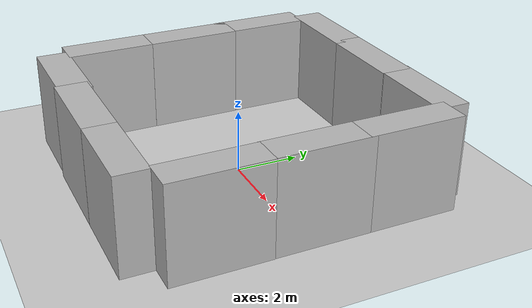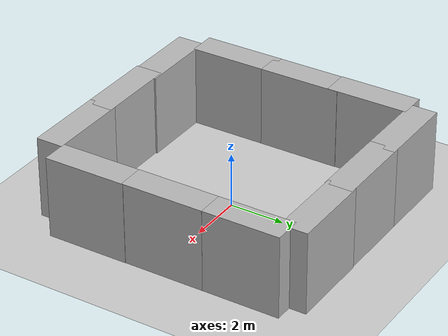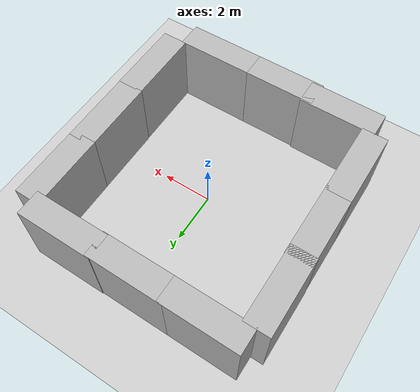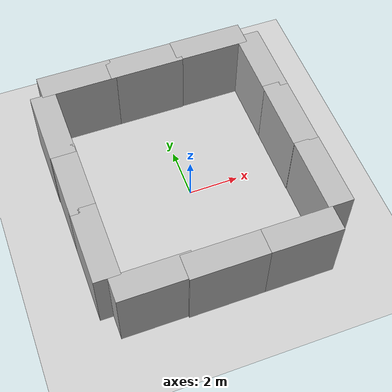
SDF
<sdf version="1.7">
 <world name="default">
  <light name="sun" type="directional">
   <pose>0 0 10 0 -0 0</pose>
   <diffuse>0.8 0.8 0.8 1</diffuse>
   <specular>0.2 0.2 0.2 1</specular>
   <attenuation>
    <range>1000</range>
    <constant>0.9</constant>
    <linear>0.01</linear>
    <quadratic>0.001</quadratic>
   </attenuation>
   <direction>-0.5 0.1 -0.9</direction>
   <spot><inner_angle>0</inner_angle><outer_angle>0</outer_angle><falloff>0</falloff></spot>
  </light>
  <model name="ground_plane">
   <static>1</static>
   <link name="link">
    <collision name="collision">
     <geometry><plane><normal>0 0 1</normal><size>100 100</size></plane></geometry>
     <surface><friction><ode><mu>100</mu><mu2>50</mu2></ode></friction></surface>
    </collision>
    <visual name="visual">
     <cast_shadows>0</cast_shadows>
     <geometry><plane><normal>0 0 1</normal><size>100 100</size></plane></geometry>
     <material>
      <script><uri>file://media/materials/scripts/gazebo.material</uri><name>Gazebo/Grey</name></script>
     </material>
    </visual>
   </link>
  </model>
  <gravity>0 0 -9.8</gravity>
  <magnetic_field>6e-06 2.3e-05 -4.2e-05</magnetic_field>
  <atmosphere type="adiabatic"/>
  <physics type="ode">
   <max_step_size>0.001</max_step_size>
   <real_time_factor>1</real_time_factor>
   <real_time_update_rate>1000</real_time_update_rate>
  </physics>
  <scene><ambient>0.4 0.4 0.4 1</ambient><background>0.7 0.7 0.7 1</background><shadows>1</shadows></scene>
  <audio><device>default</device></audio>
  <spherical_coordinates>
   <surface_model>EARTH_WGS84</surface_model>
   <latitude_deg>0</latitude_deg>
   <longitude_deg>0</longitude_deg>
   <elevation>0</elevation>
   <heading_deg>0</heading_deg>
  </spherical_coordinates>
  <model name="brick_box_3x1x3">
   <static>1</static>
   <link name="chassis">
    <pose>0 0 1.5 0 -0 0</pose>
    <collision name="collision"><geometry><box><size>3 1 3</size></box></geometry></collision>
    <visual name="visual">
     <geometry><mesh><uri>model://brick_box_3x1x3/meshes/simple_box.dae</uri><scale>3 1 3</scale></mesh></geometry>
     <material>
      <script>
       <uri>model://brick_box_3x1x3/materials/scripts</uri>
       <uri>model://brick_box_3x1x3/materials/textures</uri>
       <name>BrickBox/Diffuse</name>
      </script>
     </material>
    </visual>
   </link>
   <pose>-0.404993 -4.56188 0 0 -0 0</pose>
  </model>
  <model name="brick_box_3x1x3_0">
   <static>1</static>
   <link name="chassis">
    <pose>0 0 1.5 0 -0 0</pose>
    <collision name="collision"><geometry><box><size>3 1 3</size></box></geometry></collision>
    <visual name="visual">
     <geometry><mesh><uri>model://brick_box_3x1x3/meshes/simple_box.dae</uri><scale>3 1 3</scale></mesh></geometry>
     <material>
      <script>
       <uri>model://brick_box_3x1x3/materials/scripts</uri>
       <uri>model://brick_box_3x1x3/materials/textures</uri>
       <name>BrickBox/Diffuse</name>
      </script>
     </material>
    </visual>
   </link>
   <pose>2.36751 -4.5609 0 0 -0 0</pose>
  </model>
  <model name="brick_box_3x1x3_1">
   <static>1</static>
   <link name="chassis">
    <pose>0 0 1.5 0 -0 0</pose>
    <collision name="collision"><geometry><box><size>3 1 3</size></box></geometry></collision>
    <visual name="visual">
     <geometry><mesh><uri>model://brick_box_3x1x3/meshes/simple_box.dae</uri><scale>3 1 3</scale></mesh></geometry>
     <material>
      <script>
       <uri>model://brick_box_3x1x3/materials/scripts</uri>
       <uri>model://brick_box_3x1x3/materials/textures</uri>
       <name>BrickBox/Diffuse</name>
      </script>
     </material>
    </visual>
   </link>
   <pose>4.20893 -2.57435 0 0 0 -1.56738</pose>
  </model>
  <model name="brick_box_3x1x3_1_clone">
   <static>1</static>
   <link name="chassis">
    <pose>0 0 1.5 0 -0 0</pose>
    <collision name="collision"><geometry><box><size>3 1 3</size></box></geometry></collision>
    <visual name="visual">
     <geometry><mesh><uri>model://brick_box_3x1x3/meshes/simple_box.dae</uri><scale>3 1 3</scale></mesh></geometry>
     <material>
      <script>
       <uri>model://brick_box_3x1x3/materials/scripts</uri>
       <uri>model://brick_box_3x1x3/materials/textures</uri>
       <name>BrickBox/Diffuse</name>
      </script>
     </material>
    </visual>
   </link>
   <pose>4.18643 0.370492 0 0 0 -1.56738</pose>
  </model>
  <model name="brick_box_3x1x3_1_clone_0">
   <static>1</static>
   <link name="chassis">
    <pose>0 0 1.5 0 -0 0</pose>
    <collision name="collision"><geometry><box><size>3 1 3</size></box></geometry></collision>
    <visual name="visual">
     <geometry><mesh><uri>model://brick_box_3x1x3/meshes/simple_box.dae</uri><scale>3 1 3</scale></mesh></geometry>
     <material>
      <script>
       <uri>model://brick_box_3x1x3/materials/scripts</uri>
       <uri>model://brick_box_3x1x3/materials/textures</uri>
       <name>BrickBox/Diffuse</name>
      </script>
     </material>
    </visual>
   </link>
   <pose>4.17464 3.17613 0 0 0 -1.56738</pose>
  </model>
  <model name="brick_box_3x1x3_1_clone_1">
   <static>1</static>
   <link name="chassis">
    <pose>0 0 1.5 0 -0 0</pose>
    <collision name="collision"><geometry><box><size>3 1 3</size></box></geometry></collision>
    <visual name="visual">
     <geometry><mesh><uri>model://brick_box_3x1x3/meshes/simple_box.dae</uri><scale>3 1 3</scale></mesh></geometry>
     <material>
      <script>
       <uri>model://brick_box_3x1x3/materials/scripts</uri>
       <uri>model://brick_box_3x1x3/materials/textures</uri>
       <name>BrickBox/Diffuse</name>
      </script>
     </material>
    </visual>
   </link>
   <pose>-4.48611 -2.56342 0 0 0 -1.56738</pose>
  </model>
  <model name="brick_box_3x1x3_1_clone_2">
   <static>1</static>
   <link name="chassis">
    <pose>0 0 1.5 0 -0 0</pose>
    <collision name="collision"><geometry><box><size>3 1 3</size></box></geometry></collision>
    <visual name="visual">
     <geometry><mesh><uri>model://brick_box_3x1x3/meshes/simple_box.dae</uri><scale>3 1 3</scale></mesh></geometry>
     <material>
      <script>
       <uri>model://brick_box_3x1x3/materials/scripts</uri>
       <uri>model://brick_box_3x1x3/materials/textures</uri>
       <name>BrickBox/Diffuse</name>
      </script>
     </material>
    </visual>
   </link>
   <pose>-4.49432 0.219826 0 0 0 -1.56738</pose>
  </model>
  <model name="brick_box_3x1x3_1_clone_3">
   <static>1</static>
   <link name="chassis">
    <pose>0 0 1.5 0 -0 0</pose>
    <collision name="collision"><geometry><box><size>3 1 3</size></box></geometry></collision>
    <visual name="visual">
     <geometry><mesh><uri>model://brick_box_3x1x3/meshes/simple_box.dae</uri><scale>3 1 3</scale></mesh></geometry>
     <material>
      <script>
       <uri>model://brick_box_3x1x3/materials/scripts</uri>
       <uri>model://brick_box_3x1x3/materials/textures</uri>
       <name>BrickBox/Diffuse</name>
      </script>
     </material>
    </visual>
   </link>
   <pose>-4.5204 2.84961 0 0 0 -1.56738</pose>
  </model>
  <model name="brick_box_3x1x3_clone">
   <static>1</static>
   <link name="chassis">
    <pose>0 0 1.5 0 -0 0</pose>
    <collision name="collision"><geometry><box><size>3 1 3</size></box></geometry></collision>
    <visual name="visual">
     <geometry><mesh><uri>model://brick_box_3x1x3/meshes/simple_box.dae</uri><scale>3 1 3</scale></mesh></geometry>
     <material>
      <script>
       <uri>model://brick_box_3x1x3/materials/scripts</uri>
       <uri>model://brick_box_3x1x3/materials/textures</uri>
       <name>BrickBox/Diffuse</name>
      </script>
     </material>
    </visual>
   </link>
   <pose>-2.96949 -4.50432 0 0 -0 0</pose>
  </model>
  <model name="brick_box_3x1x3_clone_0">
   <static>1</static>
   <link name="chassis">
    <pose>0 0 1.5 0 -0 0</pose>
    <collision name="collision"><geometry><box><size>3 1 3</size></box></geometry></collision>
    <visual name="visual">
     <geometry><mesh><uri>model://brick_box_3x1x3/meshes/simple_box.dae</uri><scale>3 1 3</scale></mesh></geometry>
     <material>
      <script>
       <uri>model://brick_box_3x1x3/materials/scripts</uri>
       <uri>model://brick_box_3x1x3/materials/textures</uri>
       <name>BrickBox/Diffuse</name>
      </script>
     </material>
    </visual>
   </link>
   <pose>-3.04181 4.76327 0 0 -0 0</pose>
  </model>
  <model name="brick_box_3x1x3_clone_1">
   <static>1</static>
   <link name="chassis">
    <pose>0 0 1.5 0 -0 0</pose>
    <collision name="collision"><geometry><box><size>3 1 3</size></box></geometry></collision>
    <visual name="visual">
     <geometry><mesh><uri>model://brick_box_3x1x3/meshes/simple_box.dae</uri><scale>3 1 3</scale></mesh></geometry>
     <material>
      <script>
       <uri>model://brick_box_3x1x3/materials/scripts</uri>
       <uri>model://brick_box_3x1x3/materials/textures</uri>
       <name>BrickBox/Diffuse</name>
      </script>
     </material>
    </visual>
   </link>
   <pose>-0.255035 4.7635 0 0 -0 0</pose>
  </model>
  <model name="brick_box_3x1x3_clone_2">
   <static>1</static>
   <link name="chassis">
    <pose>0 0 1.5 0 -0 0</pose>
    <collision name="collision"><geometry><box><size>3 1 3</size></box></geometry></collision>
    <visual name="visual">
     <geometry><mesh><uri>model://brick_box_3x1x3/meshes/simple_box.dae</uri><scale>3 1 3</scale></mesh></geometry>
     <material>
      <script>
       <uri>model://brick_box_3x1x3/materials/scripts</uri>
       <uri>model://brick_box_3x1x3/materials/textures</uri>
       <name>BrickBox/Diffuse</name>
      </script>
     </material>
    </visual>
   </link>
   <pose>2.53292 4.78577 0 0 -0 0</pose>
  </model>
 </world>
</sdf>
